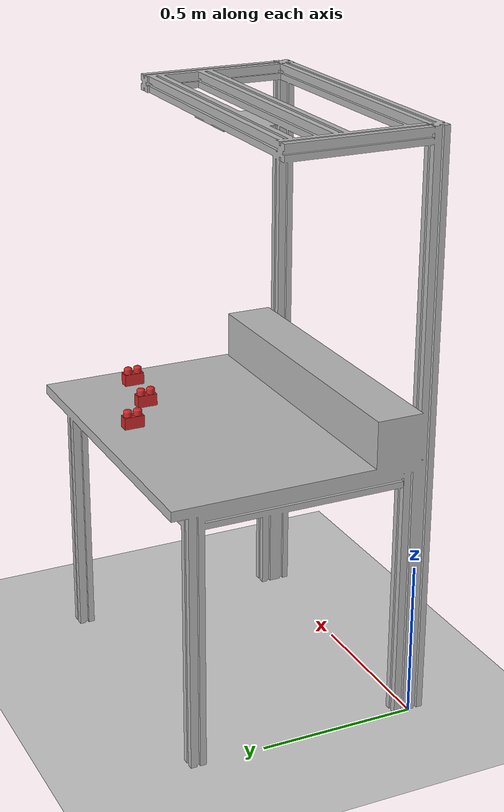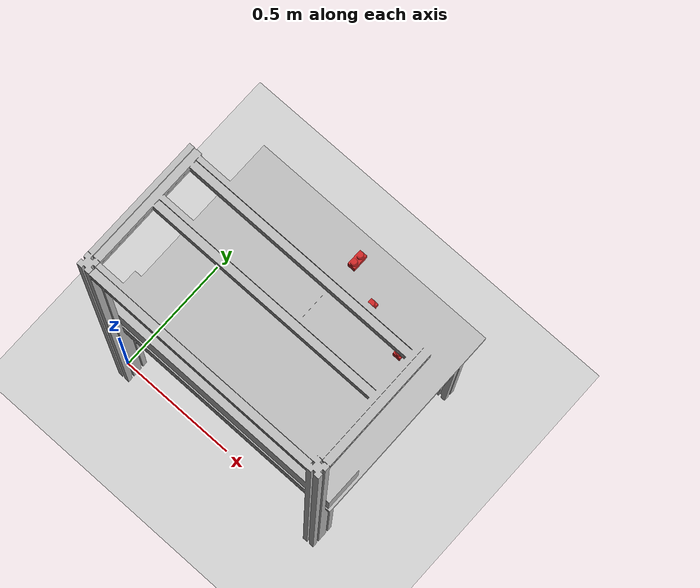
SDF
<?xml version="1.0" ?>
<sdf version="1.4">
  <world name="default">
    <physics type='ode'>
      <gravity>0 0 -9.81</gravity>
      <!-- max step size has to be a multiple of the desired task rate-->
      <max_step_size>0.001</max_step_size>
      <real_time_factor>1</real_time_factor>
    </physics>
    <!-- A global light source -->
    <include>
      <uri>model://sun</uri>
    </include>
    <!-- A ground plane -->
    <include>
      <uri>model://ground_plane</uri>
    </include>
    <include>
      <name>tavolo</name>
      <uri>model://tavolo</uri>
      <pose>0.0 0.0 0.0 0 0 0</pose>
    </include>

    <include>
      <name>brick1</name>
      <uri>model://X1-Y2-Z2</uri>
      <pose> 0.64 0.6 0.925   0 0 0</pose>
    </include>

    <include>
      <name>brick2</name>
      <uri>model://X1-Y2-Z2</uri>
      <pose> 0.82 0.57 0.925   0 0 0</pose>
    </include>

     <include>
      <name>brick3</name>
      <uri>model://X1-Y2-Z2</uri>
      <pose> 0.50 0.7 0.925   0 0 0</pose>
    </include>

    <gui>
    <camera name="gzclient_camera">
      <pose>1. 3.2 2.2 0. 0.4 -1.75</pose>
    </camera>
    </gui>

  </world>
</sdf>

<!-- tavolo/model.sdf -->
<sdf version="1.4">

<physics type="ode">

      <ode>

        <constraints>
          <contact_max_correcting_vel>0.1</contact_max_correcting_vel>
          <contact_surface_layer>0.0001</contact_surface_layer>
        </constraints>
      </ode>
	<max_contacts>10</max_contacts>
	</physics>

	<model name="tavolo">
	    <static>true</static>
		<link name="link">

		     <collision name="base">
			<pose>0.5 0.4 0.85 0 0 0</pose>
			<geometry>
			  <box>
			    <size>1 0.8 0.04</size>
			  </box>
			</geometry>

				<!-- see https://gazebosim.org/tutorials?tut=physics_params&cat=physics-->
				 <surface>
				  <bounce>
				    <restitution_coefficient>0.01</restitution_coefficient>
				    <threshold>5.0</threshold>
				  </bounce>
				  <friction>
				    <ode>
				      <mu>10</mu>
				      <mu2>10</mu2>
				    </ode>
				  </friction>
				  <contact>
				     <ode>
					<max_vel>0.1</max_vel>
					<min_depth>0.001</min_depth>
				        <kp>1000000.0</kp>
					<kd>1000.0</kd>
				      </ode>
			            </contact>
				</surface>

		     	</collision>

	     			<collision name="box">
				<pose>0.5 0.08 0.95 0 0 0</pose>
				<geometry>
				  <box>
				    <size>1 0.15 0.15</size>
				  </box>
				</geometry>

				 <surface>
				  <bounce>
				    <restitution_coefficient>0.01</restitution_coefficient>
				    <threshold>5.0</threshold>
				  </bounce>
				  <friction>
				    <ode>
				      <mu>10</mu>
				      <mu2>10</mu2>
				    </ode>
				  </friction>
				  <contact>
				     <ode>
					<max_vel>0.1</max_vel>
					<min_depth>0.001</min_depth>
				        <kp>1000000.0</kp>
					<kd>1000.0</kd>
				      </ode>
			            </contact>
				</surface>

			      </collision>

			   <collision name="back">
				<pose>0.5 -0.02 1.35 1.57 0 0</pose>
				<geometry>
				  <box>
				    <size>1 1.0 0.04</size>
				  </box>
				</geometry>

				 <surface>
				  <bounce>
				    <restitution_coefficient>0.01</restitution_coefficient>
				    <threshold>5.0</threshold>
				  </bounce>
				  <friction>
				    <ode>
				      <mu>10</mu>
				      <mu2>10</mu2>
				    </ode>
				  </friction>
				  <contact>
				     <ode>
					<max_vel>0.1</max_vel>
					<min_depth>0.001</min_depth>
				        <kp>1000000.0</kp>
					<kd>1000.0</kd>
				      </ode>
			            </contact>
				</surface>

			      </collision>

			<visual name="visual">
				<geometry>
					<mesh>
						<uri>model://tavolo/mesh/tavolo.stl</uri>
                                                <scale>0.001 0.001 0.001</scale>
					</mesh>
				</geometry>
			</visual>
		</link>
	</model>
</sdf>

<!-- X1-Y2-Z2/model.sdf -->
<sdf version="1.4">
  <model name="X1-Y2-Z2">
    <static>false</static>
    <link name="link">
      <pose>0 0 0 0 0 0</pose>
      <inertial>
        <pose>0 0 0.029775e-02 0 0 0</pose>
        <mass>14.626943e-6</mass>
        <inertia>
          <ixx>100.1e-10</ixx>
          <ixy>0.00044e-10</ixy>
          <ixz>-0.0027e-10</ixz>
          <iyy>58.5e-10</iyy>
          <iyz>-0.00236e-10</iyz>
          <izz>79.66e-10</izz>
        </inertia>
      </inertial>

      <visual name="visual">
        <geometry>
          <mesh>
            <uri>model://X1-Y2-Z2/meshes/X1-Y2-Z2.stl</uri>
          </mesh>
        </geometry>
        <material>
          <script>
            <uri>file://media/materials/scripts/gazebo.material</uri>
            <name>Gazebo/Red</name>
          </script>
        </material>
      </visual>

      <collision name="collision">
        <geometry>
          <mesh>
            <uri>model://X1-Y2-Z2/meshes/X1-Y2-Z2.stl</uri>
          </mesh>
        </geometry>
      </collision>
    </link>
  </model>
</sdf>
